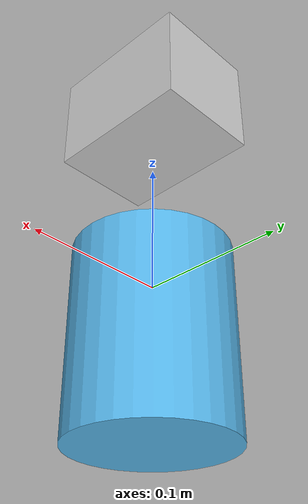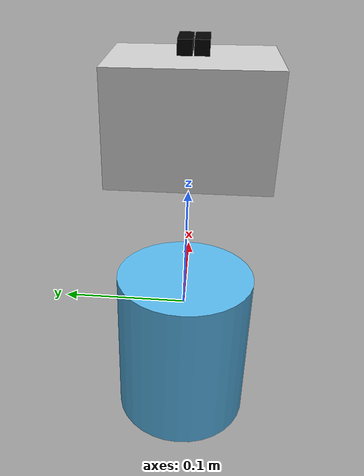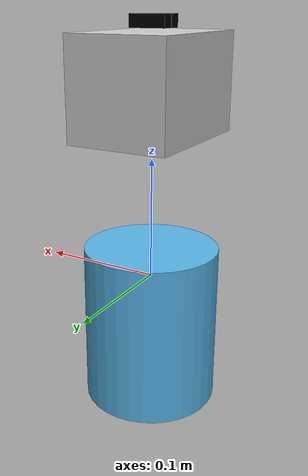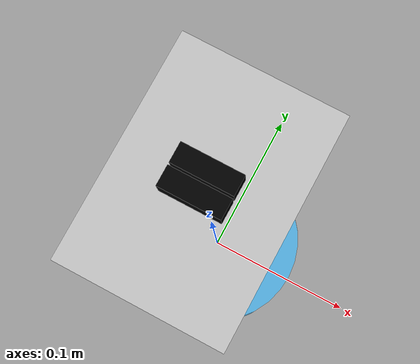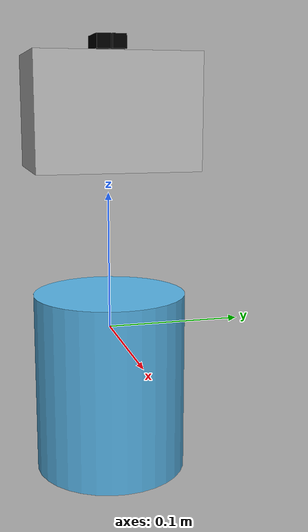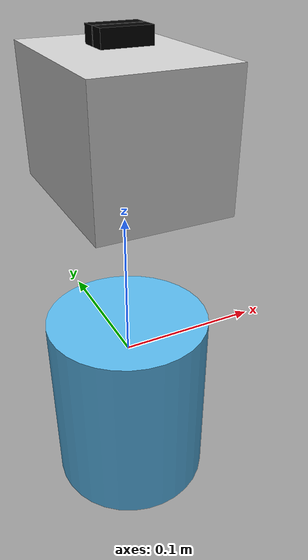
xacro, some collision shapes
<?xml version="1.0"?>
<robot xmlns:xacro="http://www.ros.org/wiki/xacro"
       name="pg70" >

  <!-- common stuff -->
  <xacro:include filename="$(find schunk_description)/urdf/common.xacro" />
  <xacro:include filename="$(find schunk_description)/urdf/materials.urdf.xacro" />

  <!-- schunk pg70 -->
  <xacro:include filename="$(find schunk_description)/urdf/pg70/pg70.urdf.xacro" />

  <!-- Used for fixing robot to Gazebo -->
  <link name="world"/>

  <!-- arm -->
  <xacro:schunk_pg70 name="pg70" parent="world" has_podest="true">
    <origin xyz="0 0 0.026" rpy="0 0 0" /> <!--slightly above gazebo plane-->
  </xacro:schunk_pg70>

</robot>

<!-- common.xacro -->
<robot xmlns:xacro="http://www.ros.org/wiki/xacro">

  <xacro:property name="M_PI" value="3.1415926535897931" />

  <!-- see https://secure.wikimedia.org/wikipedia/en/wiki/List_of_moment_of_inertia_tensors -->
  <xacro:macro name="sphere_inertial" params="radius mass *origin">
    <inertial>
      <mass value="${mass}" />
      <xacro:insert_block name="origin" />
      <inertia ixx="${0.4 * mass * radius * radius}" ixy="0.0" ixz="0.0"
        iyy="${0.4 * mass * radius * radius}" iyz="0.0"
        izz="${0.4 * mass * radius * radius}" />
    </inertial>
  </xacro:macro>

  <xacro:macro name="cylinder_inertial" params="radius length mass *origin">
    <inertial>
      <mass value="${mass}" />
      <xacro:insert_block name="origin" />
      <inertia ixx="${0.0833333 * mass * (3 * radius * radius + length * length)}" ixy="0.0" ixz="0.0"
        iyy="${0.0833333 * mass * (3 * radius * radius + length * length)}" iyz="0.0"
        izz="${0.5 * mass * radius * radius}" />
    </inertial>
  </xacro:macro>

  <xacro:macro name="box_inertial" params="x y z mass *origin">
    <inertial>
      <mass value="${mass}" />
      <xacro:insert_block name="origin" />
      <inertia ixx="${0.0833333 * mass * (y*y + z*z)}" ixy="0.0" ixz="0.0"
        iyy="${0.0833333 * mass * (x*x + z*z)}" iyz="0.0"
        izz="${0.0833333 * mass * (x*x + y*y)}" />
    </inertial>
  </xacro:macro>

  <xacro:macro name="default_inertial">
    <inertial>
      <mass value="0.01" />
      <origin xyz="0 0 0" />
      <inertia ixx="0.001" ixy="0.0" ixz="0.0" iyy="0.001" iyz="0.0" izz="0.001" />
    </inertial>
  </xacro:macro>

  <xacro:macro name="default_transmission" params="jname">
    <transmission name="${jname}_trans">
      <type>transmission_interface/SimpleTransmission</type>
      <joint name="${jname}_joint">
        <hardwareInterface>PositionJointInterface</hardwareInterface>
        <hardwareInterface>VelocityJointInterface</hardwareInterface>
      </joint>
      <actuator name="${jname}_motor">
        <mechanicalReduction>1</mechanicalReduction>
      </actuator>
    </transmission>
  </xacro:macro>

</robot>

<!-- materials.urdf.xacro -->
<robot>

  <material name="Schunk/LightGrey">
    <color rgba="0.7 0.7 0.7 1.0"/>
  </material>

  <material name="Schunk/DarkGrey">
    <color rgba="0.4 0.4 0.4 1.0"/>
  </material>

  <material name="Schunk/Black">
    <color rgba="0.0 0.0 0.0 1.0"/>
  </material>

  <material name="Schunk/DarkGolden">
    <color rgba="0.4 0.4 0.3 1.0"/>
  </material>

  <material name="Schunk/Blue">
    <color rgba="0.0 0.0 0.8 1.0"/>
  </material>

  <material name="Schunk/DarkBlue">
      <color rgba="0.05 0.0 0.4 1.0"/>
  </material>

</robot>

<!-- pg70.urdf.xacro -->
<robot xmlns:xacro="http://www.ros.org/wiki/xacro">

  <xacro:include filename="$(find schunk_description)/urdf/common.xacro" />
  <xacro:include filename="$(find schunk_description)/urdf/pg70/pg70.gazebo.xacro" />
  <xacro:include filename="$(find schunk_description)/urdf/pg70/pg70.transmission.xacro" />

  <xacro:macro name="schunk_pg70" params="parent name *origin has_podest">

    <xacro:if value="${has_podest}">
      <joint name="${name}_podest_joint" type="fixed">
        <xacro:insert_block name="origin" />
        <parent link="${parent}"/>
        <child link="${name}_podest_link"/>
      </joint>
      <link name="${name}_podest_link">
        <xacro:default_inertial/>
        <visual>
          <origin xyz="0 0 0" rpy="0 ${M_PI} 0" />
          <geometry>
          <mesh filename="package://schunk_description/meshes/lwa4p/arm_base_link.stl" />
          </geometry>
        </visual>

        <collision>
          <origin xyz="0 0 0" rpy="0 ${M_PI} 0" />
          <geometry>
          <mesh filename="package://schunk_description/meshes/lwa4p/arm_base_link.stl" />
          </geometry>
        </collision>
      </link>

      <joint name="${name}_palm_joint" type="fixed">
        <origin xyz="0 0 0.10" rpy="0 0 0" />
        <parent link="${name}_podest_link"/>
        <child link="${name}_palm_link"/>
      </joint>
    </xacro:if>

    <xacro:unless value="${has_podest}">
      <joint name="${name}_palm_joint" type="fixed">
        <xacro:insert_block name="origin" />
        <parent link="${parent}"/>
        <child link="${name}_palm_link" />
      </joint>
    </xacro:unless>

    <link name="${name}_palm_link">
      <inertial>
        <origin xyz="0 0 0" rpy="0 0 0"/>
        <mass value="1"/>
        <inertia ixx="0.01" ixy="0" ixz="0" iyy="0.01" iyz="0" izz="0.01" />
      </inertial>
      <visual>
        <geometry>
          <mesh filename="package://schunk_description/meshes/pg70/pg70.dae" />
        </geometry>
      </visual>
      <collision>
        <origin xyz="0 0 ${0.040-0.5*0.0171}" rpy="0 0 0" />
        <geometry>
          <box size="0.082 0.114 0.080" />
        </geometry>
      </collision>
    </link>

    <joint name="${name}_finger_left_joint" type="prismatic" >
      <origin xyz="0 0.0055 0.0789" rpy="0 0 0"/>
      <parent link="${name}_palm_link" />
      <child link="${name}_finger_left_link" />
      <axis xyz="0 1 0" />
      <limit effort="10" lower="-0.001" upper="0.0301" velocity="0.041"/>
    </joint>

    <link name="${name}_finger_left_link">
      <inertial>
        <origin xyz="0 0 0" rpy="0 0 0"/>
        <mass value="1"/>
        <inertia ixx="0.01" ixy="0" ixz="0" iyy="0.01" iyz="0" izz="0.01" />
      </inertial>
      <visual>
        <geometry>
          <box size="0.03 0.01 0.01"/>
        </geometry>
        <material name="black">
          <color rgba="0 0 0 1"/>
        </material>
      </visual>
      <collision>
        <geometry>
          <box size="0.03 0.01 0.01"/>
        </geometry>
        <material name="black">
          <color rgba="0 0 0 1"/>
        </material>
      </collision>
    </link>

    <joint name="${name}_finger_right_joint" type="prismatic" >
      <origin xyz="0 -0.0055 0.0789" rpy="-0 0 0"/>
      <parent link="${name}_palm_link" />
      <child link="${name}_finger_right_link" />
      <axis xyz="0 -1 0" />
      <mimic joint="${name}_finger_left_joint" multiplier="1" offset="0"/>
      <limit effort="10" lower="-0.001" upper="0.0301" velocity="0.041"/>
    </joint>

    <link name="${name}_finger_right_link">
      <inertial>
        <origin xyz="0 0 0" rpy="0 0 0"/>
        <mass value="1"/>
        <inertia ixx="0.01" ixy="0" ixz="0" iyy="0.01" iyz="0" izz="0.01" />
      </inertial>
      <visual>
        <geometry>
          <box size="0.03 0.01 0.01"/>
        </geometry>
        <material name="black">
          <color rgba="0 0 0 1"/>
        </material>
      </visual>
      <collision>
        <geometry>
          <box size="0.03 0.01 0.01"/>
        </geometry>
        <material name="black">
          <color rgba="0 0 0 1"/>
        </material>
      </collision>
    </link>

    <!-- extensions -->
    <xacro:schunk_pg70_gazebo name="${name}" />
    <xacro:schunk_pg70_transmission name="${name}" />

    <!-- ros_control plugin -->
    <gazebo>
      <plugin name="ros_control" filename="libhwi_switch_gazebo_ros_control.so">
        <robotNamespace>${name}</robotNamespace>
        <filterJointsParam>joint_names</filterJointsParam>
      </plugin>
    </gazebo>

  </xacro:macro>
</robot>
